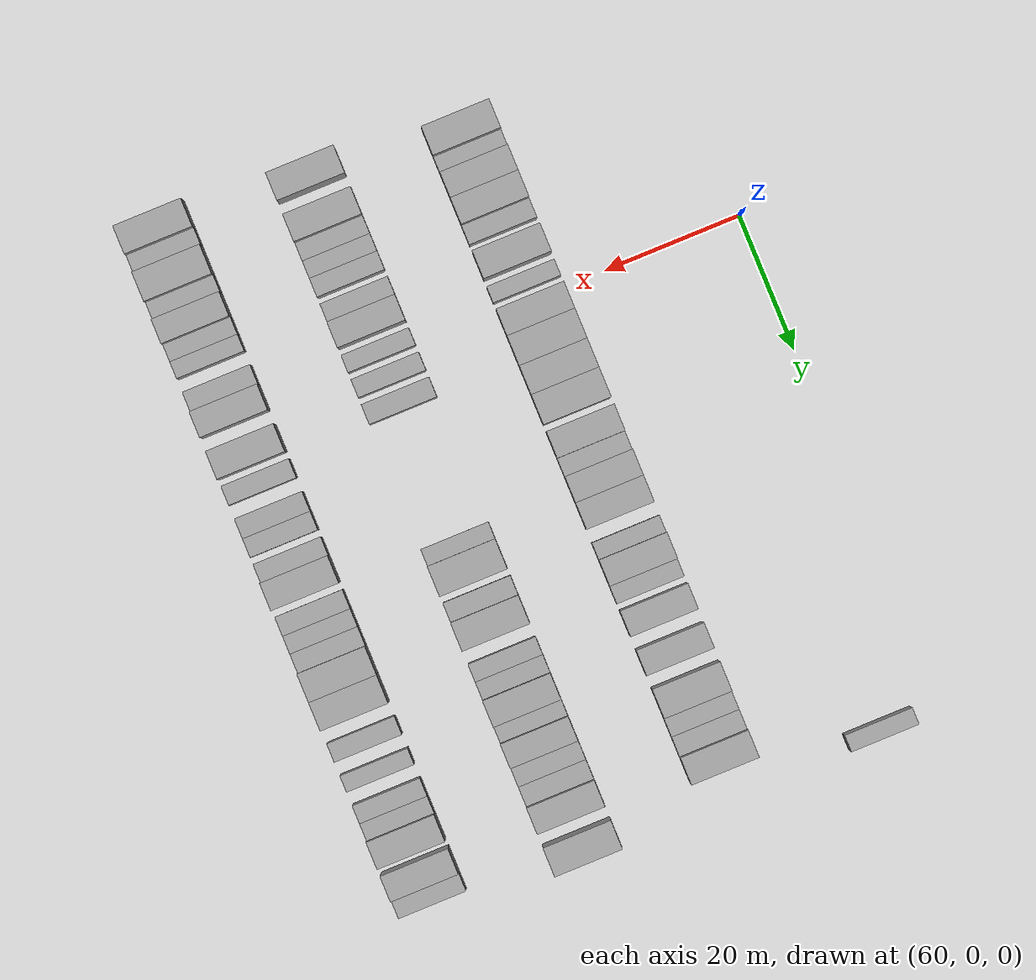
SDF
<sdf version="1.6">
 <world name="default">
  <model name="building_479">
   <static>1</static>
   <pose>69.0000 72.6843 0 0.000000 0.000000 0.000000</pose>
   <link name="link">
    <pose>0 0 3.00 0 0 0</pose>
    <collision name="collision"><geometry><box><size>10.0000 2.4577 6.0000</size></box></geometry></collision>
    <visual name="visual">
     <cast_shadows>0</cast_shadows>
     <geometry><box><size>10.0000 2.4577 6.0000</size></box></geometry>
     <material>
      <script>
       <uri>model://grey_wall/materials/scripts</uri>
       <uri>model://grey_wall/materials/textures</uri>
       <name>vrc/grey_wall</name>
      </script>
     </material>
    </visual>
   </link>
  </model>
  <model name="building_647">
   <static>1</static>
   <pose>91.0000 -25.2966 0 0.000000 0.000000 0.000000</pose>
   <link name="link">
    <pose>0 0 4.50 0 0 0</pose>
    <collision name="collision"><geometry><box><size>10.0000 4.2672 9.0000</size></box></geometry></collision>
    <visual name="visual">
     <cast_shadows>0</cast_shadows>
     <geometry><box><size>10.0000 4.2672 9.0000</size></box></geometry>
     <material>
      <script>
       <uri>model://grey_wall/materials/scripts</uri>
       <uri>model://grey_wall/materials/textures</uri>
       <name>vrc/grey_wall</name>
      </script>
     </material>
    </visual>
   </link>
  </model>
  <model name="building_648">
   <static>1</static>
   <pose>91.0000 -21.9353 0 0.000000 0.000000 0.000000</pose>
   <link name="link">
    <pose>0 0 3.00 0 0 0</pose>
    <collision name="collision"><geometry><box><size>10.0000 2.4554 6.0000</size></box></geometry></collision>
    <visual name="visual">
     <cast_shadows>0</cast_shadows>
     <geometry><box><size>10.0000 2.4554 6.0000</size></box></geometry>
     <material>
      <script>
       <uri>model://grey_wall/materials/scripts</uri>
       <uri>model://grey_wall/materials/textures</uri>
       <name>vrc/grey_wall</name>
      </script>
     </material>
    </visual>
   </link>
  </model>
  <model name="building_649">
   <static>1</static>
   <pose>91.0000 -18.8264 0 0.000000 0.000000 0.000000</pose>
   <link name="link">
    <pose>0 0 4.50 0 0 0</pose>
    <collision name="collision"><geometry><box><size>10.0000 3.7625 9.0000</size></box></geometry></collision>
    <visual name="visual">
     <cast_shadows>0</cast_shadows>
     <geometry><box><size>10.0000 3.7625 9.0000</size></box></geometry>
     <material>
      <script>
       <uri>model://grey_wall/materials/scripts</uri>
       <uri>model://grey_wall/materials/textures</uri>
       <name>vrc/grey_wall</name>
      </script>
     </material>
    </visual>
   </link>
  </model>
  <model name="building_650">
   <static>1</static>
   <pose>91.0000 -14.9778 0 0.000000 0.000000 0.000000</pose>
   <link name="link">
    <pose>0 0 4.50 0 0 0</pose>
    <collision name="collision"><geometry><box><size>10.0000 3.9345 9.0000</size></box></geometry></collision>
    <visual name="visual">
     <cast_shadows>0</cast_shadows>
     <geometry><box><size>10.0000 3.9345 9.0000</size></box></geometry>
     <material>
      <script>
       <uri>model://grey_wall/materials/scripts</uri>
       <uri>model://grey_wall/materials/textures</uri>
       <name>vrc/grey_wall</name>
      </script>
     </material>
    </visual>
   </link>
  </model>
  <model name="building_651">
   <static>1</static>
   <pose>91.0000 -11.5819 0 0.000000 0.000000 0.000000</pose>
   <link name="link">
    <pose>0 0 3.00 0 0 0</pose>
    <collision name="collision"><geometry><box><size>10.0000 2.8575 6.0000</size></box></geometry></collision>
    <visual name="visual">
     <cast_shadows>0</cast_shadows>
     <geometry><box><size>10.0000 2.8575 6.0000</size></box></geometry>
     <material>
      <script>
       <uri>model://grey_wall/materials/scripts</uri>
       <uri>model://grey_wall/materials/textures</uri>
       <name>vrc/grey_wall</name>
      </script>
     </material>
    </visual>
   </link>
  </model>
  <model name="building_652">
   <static>1</static>
   <pose>91.0000 -7.0618 0 0.000000 0.000000 0.000000</pose>
   <link name="link">
    <pose>0 0 4.50 0 0 0</pose>
    <collision name="collision"><geometry><box><size>10.0000 4.1827 9.0000</size></box></geometry></collision>
    <visual name="visual">
     <cast_shadows>0</cast_shadows>
     <geometry><box><size>10.0000 4.1827 9.0000</size></box></geometry>
     <material>
      <script>
       <uri>model://grey_wall/materials/scripts</uri>
       <uri>model://grey_wall/materials/textures</uri>
       <name>vrc/grey_wall</name>
      </script>
     </material>
    </visual>
   </link>
  </model>
  <model name="building_653">
   <static>1</static>
   <pose>91.0000 -2.7565 0 0.000000 0.000000 0.000000</pose>
   <link name="link">
    <pose>0 0 3.00 0 0 0</pose>
    <collision name="collision"><geometry><box><size>10.0000 2.4277 6.0000</size></box></geometry></collision>
    <visual name="visual">
     <cast_shadows>0</cast_shadows>
     <geometry><box><size>10.0000 2.4277 6.0000</size></box></geometry>
     <material>
      <script>
       <uri>model://grey_wall/materials/scripts</uri>
       <uri>model://grey_wall/materials/textures</uri>
       <name>vrc/grey_wall</name>
      </script>
     </material>
    </visual>
   </link>
  </model>
  <model name="building_654">
   <static>1</static>
   <pose>91.0000 1.4361 0 0.000000 0.000000 0.000000</pose>
   <link name="link">
    <pose>0 0 4.50 0 0 0</pose>
    <collision name="collision"><geometry><box><size>10.0000 3.9575 9.0000</size></box></geometry></collision>
    <visual name="visual">
     <cast_shadows>0</cast_shadows>
     <geometry><box><size>10.0000 3.9575 9.0000</size></box></geometry>
     <material>
      <script>
       <uri>model://grey_wall/materials/scripts</uri>
       <uri>model://grey_wall/materials/textures</uri>
       <name>vrc/grey_wall</name>
      </script>
     </material>
    </visual>
   </link>
  </model>
  <model name="building_655">
   <static>1</static>
   <pose>91.0000 5.6165 0 0.000000 0.000000 0.000000</pose>
   <link name="link">
    <pose>0 0 4.50 0 0 0</pose>
    <collision name="collision"><geometry><box><size>10.0000 4.4033 9.0000</size></box></geometry></collision>
    <visual name="visual">
     <cast_shadows>0</cast_shadows>
     <geometry><box><size>10.0000 4.4033 9.0000</size></box></geometry>
     <material>
      <script>
       <uri>model://grey_wall/materials/scripts</uri>
       <uri>model://grey_wall/materials/textures</uri>
       <name>vrc/grey_wall</name>
      </script>
     </material>
    </visual>
   </link>
  </model>
  <model name="building_656">
   <static>1</static>
   <pose>91.0000 9.9535 0 0.000000 0.000000 0.000000</pose>
   <link name="link">
    <pose>0 0 4.50 0 0 0</pose>
    <collision name="collision"><geometry><box><size>10.0000 4.2708 9.0000</size></box></geometry></collision>
    <visual name="visual">
     <cast_shadows>0</cast_shadows>
     <geometry><box><size>10.0000 4.2708 9.0000</size></box></geometry>
     <material>
      <script>
       <uri>model://grey_wall/materials/scripts</uri>
       <uri>model://grey_wall/materials/textures</uri>
       <name>vrc/grey_wall</name>
      </script>
     </material>
    </visual>
   </link>
  </model>
  <model name="building_657">
   <static>1</static>
   <pose>91.0000 14.3061 0 0.000000 0.000000 0.000000</pose>
   <link name="link">
    <pose>0 0 4.50 0 0 0</pose>
    <collision name="collision"><geometry><box><size>10.0000 4.4345 9.0000</size></box></geometry></collision>
    <visual name="visual">
     <cast_shadows>0</cast_shadows>
     <geometry><box><size>10.0000 4.4345 9.0000</size></box></geometry>
     <material>
      <script>
       <uri>model://grey_wall/materials/scripts</uri>
       <uri>model://grey_wall/materials/textures</uri>
       <name>vrc/grey_wall</name>
      </script>
     </material>
    </visual>
   </link>
  </model>
  <model name="building_658">
   <static>1</static>
   <pose>91.0000 19.4960 0 0.000000 0.000000 0.000000</pose>
   <link name="link">
    <pose>0 0 4.50 0 0 0</pose>
    <collision name="collision"><geometry><box><size>10.0000 3.9454 9.0000</size></box></geometry></collision>
    <visual name="visual">
     <cast_shadows>0</cast_shadows>
     <geometry><box><size>10.0000 3.9454 9.0000</size></box></geometry>
     <material>
      <script>
       <uri>model://grey_wall/materials/scripts</uri>
       <uri>model://grey_wall/materials/textures</uri>
       <name>vrc/grey_wall</name>
      </script>
     </material>
    </visual>
   </link>
  </model>
  <model name="building_659">
   <static>1</static>
   <pose>91.0000 22.8226 0 0.000000 0.000000 0.000000</pose>
   <link name="link">
    <pose>0 0 3.00 0 0 0</pose>
    <collision name="collision"><geometry><box><size>10.0000 2.7078 6.0000</size></box></geometry></collision>
    <visual name="visual">
     <cast_shadows>0</cast_shadows>
     <geometry><box><size>10.0000 2.7078 6.0000</size></box></geometry>
     <material>
      <script>
       <uri>model://grey_wall/materials/scripts</uri>
       <uri>model://grey_wall/materials/textures</uri>
       <name>vrc/grey_wall</name>
      </script>
     </material>
    </visual>
   </link>
  </model>
  <model name="building_660">
   <static>1</static>
   <pose>91.0000 26.0993 0 0.000000 0.000000 0.000000</pose>
   <link name="link">
    <pose>0 0 4.50 0 0 0</pose>
    <collision name="collision"><geometry><box><size>10.0000 3.8456 9.0000</size></box></geometry></collision>
    <visual name="visual">
     <cast_shadows>0</cast_shadows>
     <geometry><box><size>10.0000 3.8456 9.0000</size></box></geometry>
     <material>
      <script>
       <uri>model://grey_wall/materials/scripts</uri>
       <uri>model://grey_wall/materials/textures</uri>
       <name>vrc/grey_wall</name>
      </script>
     </material>
    </visual>
   </link>
  </model>
  <model name="building_661">
   <static>1</static>
   <pose>91.0000 29.9905 0 0.000000 0.000000 0.000000</pose>
   <link name="link">
    <pose>0 0 4.50 0 0 0</pose>
    <collision name="collision"><geometry><box><size>10.0000 3.9366 9.0000</size></box></geometry></collision>
    <visual name="visual">
     <cast_shadows>0</cast_shadows>
     <geometry><box><size>10.0000 3.9366 9.0000</size></box></geometry>
     <material>
      <script>
       <uri>model://grey_wall/materials/scripts</uri>
       <uri>model://grey_wall/materials/textures</uri>
       <name>vrc/grey_wall</name>
      </script>
     </material>
    </visual>
   </link>
  </model>
  <model name="building_662">
   <static>1</static>
   <pose>91.0000 35.2042 0 0.000000 0.000000 0.000000</pose>
   <link name="link">
    <pose>0 0 3.00 0 0 0</pose>
    <collision name="collision"><geometry><box><size>10.0000 2.4910 6.0000</size></box></geometry></collision>
    <visual name="visual">
     <cast_shadows>0</cast_shadows>
     <geometry><box><size>10.0000 2.4910 6.0000</size></box></geometry>
     <material>
      <script>
       <uri>model://grey_wall/materials/scripts</uri>
       <uri>model://grey_wall/materials/textures</uri>
       <name>vrc/grey_wall</name>
      </script>
     </material>
    </visual>
   </link>
  </model>
  <model name="building_663">
   <static>1</static>
   <pose>91.0000 38.3889 0 0.000000 0.000000 0.000000</pose>
   <link name="link">
    <pose>0 0 4.50 0 0 0</pose>
    <collision name="collision"><geometry><box><size>10.0000 3.8784 9.0000</size></box></geometry></collision>
    <visual name="visual">
     <cast_shadows>0</cast_shadows>
     <geometry><box><size>10.0000 3.8784 9.0000</size></box></geometry>
     <material>
      <script>
       <uri>model://grey_wall/materials/scripts</uri>
       <uri>model://grey_wall/materials/textures</uri>
       <name>vrc/grey_wall</name>
      </script>
     </material>
    </visual>
   </link>
  </model>
  <model name="building_664">
   <static>1</static>
   <pose>91.0000 41.6538 0 0.000000 0.000000 0.000000</pose>
   <link name="link">
    <pose>0 0 3.00 0 0 0</pose>
    <collision name="collision"><geometry><box><size>10.0000 2.6514 6.0000</size></box></geometry></collision>
    <visual name="visual">
     <cast_shadows>0</cast_shadows>
     <geometry><box><size>10.0000 2.6514 6.0000</size></box></geometry>
     <material>
      <script>
       <uri>model://grey_wall/materials/scripts</uri>
       <uri>model://grey_wall/materials/textures</uri>
       <name>vrc/grey_wall</name>
      </script>
     </material>
    </visual>
   </link>
  </model>
  <model name="building_665">
   <static>1</static>
   <pose>91.0000 45.8766 0 0.000000 0.000000 0.000000</pose>
   <link name="link">
    <pose>0 0 4.50 0 0 0</pose>
    <collision name="collision"><geometry><box><size>10.0000 3.7941 9.0000</size></box></geometry></collision>
    <visual name="visual">
     <cast_shadows>0</cast_shadows>
     <geometry><box><size>10.0000 3.7941 9.0000</size></box></geometry>
     <material>
      <script>
       <uri>model://grey_wall/materials/scripts</uri>
       <uri>model://grey_wall/materials/textures</uri>
       <name>vrc/grey_wall</name>
      </script>
     </material>
    </visual>
   </link>
  </model>
  <model name="building_666">
   <static>1</static>
   <pose>91.0000 51.6459 0 0.000000 0.000000 0.000000</pose>
   <link name="link">
    <pose>0 0 4.50 0 0 0</pose>
    <collision name="collision"><geometry><box><size>10.0000 3.7446 9.0000</size></box></geometry></collision>
    <visual name="visual">
     <cast_shadows>0</cast_shadows>
     <geometry><box><size>10.0000 3.7446 9.0000</size></box></geometry>
     <material>
      <script>
       <uri>model://grey_wall/materials/scripts</uri>
       <uri>model://grey_wall/materials/textures</uri>
       <name>vrc/grey_wall</name>
      </script>
     </material>
    </visual>
   </link>
  </model>
  <model name="building_667">
   <static>1</static>
   <pose>91.0000 57.6847 0 0.000000 0.000000 0.000000</pose>
   <link name="link">
    <pose>0 0 4.50 0 0 0</pose>
    <collision name="collision"><geometry><box><size>10.0000 4.3330 9.0000</size></box></geometry></collision>
    <visual name="visual">
     <cast_shadows>0</cast_shadows>
     <geometry><box><size>10.0000 4.3330 9.0000</size></box></geometry>
     <material>
      <script>
       <uri>model://grey_wall/materials/scripts</uri>
       <uri>model://grey_wall/materials/textures</uri>
       <name>vrc/grey_wall</name>
      </script>
     </material>
    </visual>
   </link>
  </model>
  <model name="building_668">
   <static>1</static>
   <pose>91.0000 61.2664 0 0.000000 0.000000 0.000000</pose>
   <link name="link">
    <pose>0 0 3.00 0 0 0</pose>
    <collision name="collision"><geometry><box><size>10.0000 2.8304 6.0000</size></box></geometry></collision>
    <visual name="visual">
     <cast_shadows>0</cast_shadows>
     <geometry><box><size>10.0000 2.8304 6.0000</size></box></geometry>
     <material>
      <script>
       <uri>model://grey_wall/materials/scripts</uri>
       <uri>model://grey_wall/materials/textures</uri>
       <name>vrc/grey_wall</name>
      </script>
     </material>
    </visual>
   </link>
  </model>
  <model name="building_669">
   <static>1</static>
   <pose>91.0000 64.1423 0 0.000000 0.000000 0.000000</pose>
   <link name="link">
    <pose>0 0 3.00 0 0 0</pose>
    <collision name="collision"><geometry><box><size>10.0000 2.9213 6.0000</size></box></geometry></collision>
    <visual name="visual">
     <cast_shadows>0</cast_shadows>
     <geometry><box><size>10.0000 2.9213 6.0000</size></box></geometry>
     <material>
      <script>
       <uri>model://grey_wall/materials/scripts</uri>
       <uri>model://grey_wall/materials/textures</uri>
       <name>vrc/grey_wall</name>
      </script>
     </material>
    </visual>
   </link>
  </model>
  <model name="building_670">
   <static>1</static>
   <pose>91.0000 67.6167 0 0.000000 0.000000 0.000000</pose>
   <link name="link">
    <pose>0 0 4.50 0 0 0</pose>
    <collision name="collision"><geometry><box><size>10.0000 4.0274 9.0000</size></box></geometry></collision>
    <visual name="visual">
     <cast_shadows>0</cast_shadows>
     <geometry><box><size>10.0000 4.0274 9.0000</size></box></geometry>
     <material>
      <script>
       <uri>model://grey_wall/materials/scripts</uri>
       <uri>model://grey_wall/materials/textures</uri>
       <name>vrc/grey_wall</name>
      </script>
     </material>
    </visual>
   </link>
  </model>
  <model name="building_834">
   <static>1</static>
   <pose>113.0000 -27.5882 0 0.000000 0.000000 0.000000</pose>
   <link name="link">
    <pose>0 0 4.50 0 0 0</pose>
    <collision name="collision"><geometry><box><size>10.0000 4.1165 9.0000</size></box></geometry></collision>
    <visual name="visual">
     <cast_shadows>0</cast_shadows>
     <geometry><box><size>10.0000 4.1165 9.0000</size></box></geometry>
     <material>
      <script>
       <uri>model://grey_wall/materials/scripts</uri>
       <uri>model://grey_wall/materials/textures</uri>
       <name>vrc/grey_wall</name>
      </script>
     </material>
    </visual>
   </link>
  </model>
  <model name="building_835">
   <static>1</static>
   <pose>113.0000 -21.4997 0 0.000000 0.000000 0.000000</pose>
   <link name="link">
    <pose>0 0 4.50 0 0 0</pose>
    <collision name="collision"><geometry><box><size>10.0000 4.0605 9.0000</size></box></geometry></collision>
    <visual name="visual">
     <cast_shadows>0</cast_shadows>
     <geometry><box><size>10.0000 4.0605 9.0000</size></box></geometry>
     <material>
      <script>
       <uri>model://grey_wall/materials/scripts</uri>
       <uri>model://grey_wall/materials/textures</uri>
       <name>vrc/grey_wall</name>
      </script>
     </material>
    </visual>
   </link>
  </model>
  <model name="building_836">
   <static>1</static>
   <pose>113.0000 -18.1268 0 0.000000 0.000000 0.000000</pose>
   <link name="link">
    <pose>0 0 3.00 0 0 0</pose>
    <collision name="collision"><geometry><box><size>10.0000 2.6852 6.0000</size></box></geometry></collision>
    <visual name="visual">
     <cast_shadows>0</cast_shadows>
     <geometry><box><size>10.0000 2.6852 6.0000</size></box></geometry>
     <material>
      <script>
       <uri>model://grey_wall/materials/scripts</uri>
       <uri>model://grey_wall/materials/textures</uri>
       <name>vrc/grey_wall</name>
      </script>
     </material>
    </visual>
   </link>
  </model>
  <model name="building_837">
   <static>1</static>
   <pose>113.0000 -15.4956 0 0.000000 0.000000 0.000000</pose>
   <link name="link">
    <pose>0 0 3.00 0 0 0</pose>
    <collision name="collision"><geometry><box><size>10.0000 2.5773 6.0000</size></box></geometry></collision>
    <visual name="visual">
     <cast_shadows>0</cast_shadows>
     <geometry><box><size>10.0000 2.5773 6.0000</size></box></geometry>
     <material>
      <script>
       <uri>model://grey_wall/materials/scripts</uri>
       <uri>model://grey_wall/materials/textures</uri>
       <name>vrc/grey_wall</name>
      </script>
     </material>
    </visual>
   </link>
  </model>
  <model name="building_838">
   <static>1</static>
   <pose>113.0000 -12.8261 0 0.000000 0.000000 0.000000</pose>
   <link name="link">
    <pose>0 0 3.00 0 0 0</pose>
    <collision name="collision"><geometry><box><size>10.0000 2.7617 6.0000</size></box></geometry></collision>
    <visual name="visual">
     <cast_shadows>0</cast_shadows>
     <geometry><box><size>10.0000 2.7617 6.0000</size></box></geometry>
     <material>
      <script>
       <uri>model://grey_wall/materials/scripts</uri>
       <uri>model://grey_wall/materials/textures</uri>
       <name>vrc/grey_wall</name>
      </script>
     </material>
    </visual>
   </link>
  </model>
  <model name="building_839">
   <static>1</static>
   <pose>113.0000 -9.0489 0 0.000000 0.000000 0.000000</pose>
   <link name="link">
    <pose>0 0 3.00 0 0 0</pose>
    <collision name="collision"><geometry><box><size>10.0000 2.7926 6.0000</size></box></geometry></collision>
    <visual name="visual">
     <cast_shadows>0</cast_shadows>
     <geometry><box><size>10.0000 2.7926 6.0000</size></box></geometry>
     <material>
      <script>
       <uri>model://grey_wall/materials/scripts</uri>
       <uri>model://grey_wall/materials/textures</uri>
       <name>vrc/grey_wall</name>
      </script>
     </material>
    </visual>
   </link>
  </model>
  <model name="building_840">
   <static>1</static>
   <pose>113.0000 -5.7442 0 0.000000 0.000000 0.000000</pose>
   <link name="link">
    <pose>0 0 4.50 0 0 0</pose>
    <collision name="collision"><geometry><box><size>10.0000 3.8169 9.0000</size></box></geometry></collision>
    <visual name="visual">
     <cast_shadows>0</cast_shadows>
     <geometry><box><size>10.0000 3.8169 9.0000</size></box></geometry>
     <material>
      <script>
       <uri>model://grey_wall/materials/scripts</uri>
       <uri>model://grey_wall/materials/textures</uri>
       <name>vrc/grey_wall</name>
      </script>
     </material>
    </visual>
   </link>
  </model>
  <model name="building_841">
   <static>1</static>
   <pose>113.0000 -1.5470 0 0.000000 0.000000 0.000000</pose>
   <link name="link">
    <pose>0 0 3.00 0 0 0</pose>
    <collision name="collision"><geometry><box><size>10.0000 2.5776 6.0000</size></box></geometry></collision>
    <visual name="visual">
     <cast_shadows>0</cast_shadows>
     <geometry><box><size>10.0000 2.5776 6.0000</size></box></geometry>
     <material>
      <script>
       <uri>model://grey_wall/materials/scripts</uri>
       <uri>model://grey_wall/materials/textures</uri>
       <name>vrc/grey_wall</name>
      </script>
     </material>
    </visual>
   </link>
  </model>
  <model name="building_842">
   <static>1</static>
   <pose>113.0000 2.0966 0 0.000000 0.000000 0.000000</pose>
   <link name="link">
    <pose>0 0 3.00 0 0 0</pose>
    <collision name="collision"><geometry><box><size>10.0000 2.7095 6.0000</size></box></geometry></collision>
    <visual name="visual">
     <cast_shadows>0</cast_shadows>
     <geometry><box><size>10.0000 2.7095 6.0000</size></box></geometry>
     <material>
      <script>
       <uri>model://grey_wall/materials/scripts</uri>
       <uri>model://grey_wall/materials/textures</uri>
       <name>vrc/grey_wall</name>
      </script>
     </material>
    </visual>
   </link>
  </model>
  <model name="building_843">
   <static>1</static>
   <pose>113.0000 5.9287 0 0.000000 0.000000 0.000000</pose>
   <link name="link">
    <pose>0 0 3.00 0 0 0</pose>
    <collision name="collision"><geometry><box><size>10.0000 2.9547 6.0000</size></box></geometry></collision>
    <visual name="visual">
     <cast_shadows>0</cast_shadows>
     <geometry><box><size>10.0000 2.9547 6.0000</size></box></geometry>
     <material>
      <script>
       <uri>model://grey_wall/materials/scripts</uri>
       <uri>model://grey_wall/materials/textures</uri>
       <name>vrc/grey_wall</name>
      </script>
     </material>
    </visual>
   </link>
  </model>
  <model name="building_844">
   <static>1</static>
   <pose>113.0000 27.1335 0 0.000000 0.000000 0.000000</pose>
   <link name="link">
    <pose>0 0 3.00 0 0 0</pose>
    <collision name="collision"><geometry><box><size>10.0000 2.4849 6.0000</size></box></geometry></collision>
    <visual name="visual">
     <cast_shadows>0</cast_shadows>
     <geometry><box><size>10.0000 2.4849 6.0000</size></box></geometry>
     <material>
      <script>
       <uri>model://grey_wall/materials/scripts</uri>
       <uri>model://grey_wall/materials/textures</uri>
       <name>vrc/grey_wall</name>
      </script>
     </material>
    </visual>
   </link>
  </model>
  <model name="building_845">
   <static>1</static>
   <pose>113.0000 30.6043 0 0.000000 0.000000 0.000000</pose>
   <link name="link">
    <pose>0 0 4.50 0 0 0</pose>
    <collision name="collision"><geometry><box><size>10.0000 4.4568 9.0000</size></box></geometry></collision>
    <visual name="visual">
     <cast_shadows>0</cast_shadows>
     <geometry><box><size>10.0000 4.4568 9.0000</size></box></geometry>
     <material>
      <script>
       <uri>model://grey_wall/materials/scripts</uri>
       <uri>model://grey_wall/materials/textures</uri>
       <name>vrc/grey_wall</name>
      </script>
     </material>
    </visual>
   </link>
  </model>
  <model name="building_846">
   <static>1</static>
   <pose>113.0000 35.2597 0 0.000000 0.000000 0.000000</pose>
   <link name="link">
    <pose>0 0 3.00 0 0 0</pose>
    <collision name="collision"><geometry><box><size>10.0000 2.8541 6.0000</size></box></geometry></collision>
    <visual name="visual">
     <cast_shadows>0</cast_shadows>
     <geometry><box><size>10.0000 2.8541 6.0000</size></box></geometry>
     <material>
      <script>
       <uri>model://grey_wall/materials/scripts</uri>
       <uri>model://grey_wall/materials/textures</uri>
       <name>vrc/grey_wall</name>
      </script>
     </material>
    </visual>
   </link>
  </model>
  <model name="building_847">
   <static>1</static>
   <pose>113.0000 38.7917 0 0.000000 0.000000 0.000000</pose>
   <link name="link">
    <pose>0 0 4.50 0 0 0</pose>
    <collision name="collision"><geometry><box><size>10.0000 4.2098 9.0000</size></box></geometry></collision>
    <visual name="visual">
     <cast_shadows>0</cast_shadows>
     <geometry><box><size>10.0000 4.2098 9.0000</size></box></geometry>
     <material>
      <script>
       <uri>model://grey_wall/materials/scripts</uri>
       <uri>model://grey_wall/materials/textures</uri>
       <name>vrc/grey_wall</name>
      </script>
     </material>
    </visual>
   </link>
  </model>
  <model name="building_848">
   <static>1</static>
   <pose>113.0000 44.2140 0 0.000000 0.000000 0.000000</pose>
   <link name="link">
    <pose>0 0 3.00 0 0 0</pose>
    <collision name="collision"><geometry><box><size>10.0000 2.6349 6.0000</size></box></geometry></collision>
    <visual name="visual">
     <cast_shadows>0</cast_shadows>
     <geometry><box><size>10.0000 2.6349 6.0000</size></box></geometry>
     <material>
      <script>
       <uri>model://grey_wall/materials/scripts</uri>
       <uri>model://grey_wall/materials/textures</uri>
       <name>vrc/grey_wall</name>
      </script>
     </material>
    </visual>
   </link>
  </model>
  <model name="building_849">
   <static>1</static>
   <pose>113.0000 46.8538 0 0.000000 0.000000 0.000000</pose>
   <link name="link">
    <pose>0 0 3.00 0 0 0</pose>
    <collision name="collision"><geometry><box><size>10.0000 2.6447 6.0000</size></box></geometry></collision>
    <visual name="visual">
     <cast_shadows>0</cast_shadows>
     <geometry><box><size>10.0000 2.6447 6.0000</size></box></geometry>
     <material>
      <script>
       <uri>model://grey_wall/materials/scripts</uri>
       <uri>model://grey_wall/materials/textures</uri>
       <name>vrc/grey_wall</name>
      </script>
     </material>
    </visual>
   </link>
  </model>
  <model name="building_850">
   <static>1</static>
   <pose>113.0000 50.1375 0 0.000000 0.000000 0.000000</pose>
   <link name="link">
    <pose>0 0 4.50 0 0 0</pose>
    <collision name="collision"><geometry><box><size>10.0000 3.9228 9.0000</size></box></geometry></collision>
    <visual name="visual">
     <cast_shadows>0</cast_shadows>
     <geometry><box><size>10.0000 3.9228 9.0000</size></box></geometry>
     <material>
      <script>
       <uri>model://grey_wall/materials/scripts</uri>
       <uri>model://grey_wall/materials/textures</uri>
       <name>vrc/grey_wall</name>
      </script>
     </material>
    </visual>
   </link>
  </model>
  <model name="building_851">
   <static>1</static>
   <pose>113.0000 53.3275 0 0.000000 0.000000 0.000000</pose>
   <link name="link">
    <pose>0 0 3.00 0 0 0</pose>
    <collision name="collision"><geometry><box><size>10.0000 2.4571 6.0000</size></box></geometry></collision>
    <visual name="visual">
     <cast_shadows>0</cast_shadows>
     <geometry><box><size>10.0000 2.4571 6.0000</size></box></geometry>
     <material>
      <script>
       <uri>model://grey_wall/materials/scripts</uri>
       <uri>model://grey_wall/materials/textures</uri>
       <name>vrc/grey_wall</name>
      </script>
     </material>
    </visual>
   </link>
  </model>
  <model name="building_852">
   <static>1</static>
   <pose>113.0000 56.3704 0 0.000000 0.000000 0.000000</pose>
   <link name="link">
    <pose>0 0 4.50 0 0 0</pose>
    <collision name="collision"><geometry><box><size>10.0000 3.6287 9.0000</size></box></geometry></collision>
    <visual name="visual">
     <cast_shadows>0</cast_shadows>
     <geometry><box><size>10.0000 3.6287 9.0000</size></box></geometry>
     <material>
      <script>
       <uri>model://grey_wall/materials/scripts</uri>
       <uri>model://grey_wall/materials/textures</uri>
       <name>vrc/grey_wall</name>
      </script>
     </material>
    </visual>
   </link>
  </model>
  <model name="building_853">
   <static>1</static>
   <pose>113.0000 59.6178 0 0.000000 0.000000 0.000000</pose>
   <link name="link">
    <pose>0 0 3.00 0 0 0</pose>
    <collision name="collision"><geometry><box><size>10.0000 2.8660 6.0000</size></box></geometry></collision>
    <visual name="visual">
     <cast_shadows>0</cast_shadows>
     <geometry><box><size>10.0000 2.8660 6.0000</size></box></geometry>
     <material>
      <script>
       <uri>model://grey_wall/materials/scripts</uri>
       <uri>model://grey_wall/materials/textures</uri>
       <name>vrc/grey_wall</name>
      </script>
     </material>
    </visual>
   </link>
  </model>
  <model name="building_854">
   <static>1</static>
   <pose>113.0000 62.5063 0 0.000000 0.000000 0.000000</pose>
   <link name="link">
    <pose>0 0 3.00 0 0 0</pose>
    <collision name="collision"><geometry><box><size>10.0000 2.9109 6.0000</size></box></geometry></collision>
    <visual name="visual">
     <cast_shadows>0</cast_shadows>
     <geometry><box><size>10.0000 2.9109 6.0000</size></box></geometry>
     <material>
      <script>
       <uri>model://grey_wall/materials/scripts</uri>
       <uri>model://grey_wall/materials/textures</uri>
       <name>vrc/grey_wall</name>
      </script>
     </material>
    </visual>
   </link>
  </model>
  <model name="building_855">
   <static>1</static>
   <pose>113.0000 65.9159 0 0.000000 0.000000 0.000000</pose>
   <link name="link">
    <pose>0 0 4.50 0 0 0</pose>
    <collision name="collision"><geometry><box><size>10.0000 3.9084 9.0000</size></box></geometry></collision>
    <visual name="visual">
     <cast_shadows>0</cast_shadows>
     <geometry><box><size>10.0000 3.9084 9.0000</size></box></geometry>
     <material>
      <script>
       <uri>model://grey_wall/materials/scripts</uri>
       <uri>model://grey_wall/materials/textures</uri>
       <name>vrc/grey_wall</name>
      </script>
     </material>
    </visual>
   </link>
  </model>
  <model name="building_856">
   <static>1</static>
   <pose>113.0000 72.0000 0 0.000000 0.000000 0.000000</pose>
   <link name="link">
    <pose>0 0 4.50 0 0 0</pose>
    <collision name="collision"><geometry><box><size>10.0000 4.2596 9.0000</size></box></geometry></collision>
    <visual name="visual">
     <cast_shadows>0</cast_shadows>
     <geometry><box><size>10.0000 4.2596 9.0000</size></box></geometry>
     <material>
      <script>
       <uri>model://grey_wall/materials/scripts</uri>
       <uri>model://grey_wall/materials/textures</uri>
       <name>vrc/grey_wall</name>
      </script>
     </material>
    </visual>
   </link>
  </model>
  <model name="building_1021">
   <static>1</static>
   <pose>135.0000 -28.7566 0 0.000000 0.000000 0.000000</pose>
   <link name="link">
    <pose>0 0 4.50 0 0 0</pose>
    <collision name="collision"><geometry><box><size>10.0000 4.1613 9.0000</size></box></geometry></collision>
    <visual name="visual">
     <cast_shadows>0</cast_shadows>
     <geometry><box><size>10.0000 4.1613 9.0000</size></box></geometry>
     <material>
      <script>
       <uri>model://grey_wall/materials/scripts</uri>
       <uri>model://grey_wall/materials/textures</uri>
       <name>vrc/grey_wall</name>
      </script>
     </material>
    </visual>
   </link>
  </model>
  <model name="building_1022">
   <static>1</static>
   <pose>135.0000 -25.3666 0 0.000000 0.000000 0.000000</pose>
   <link name="link">
    <pose>0 0 3.00 0 0 0</pose>
    <collision name="collision"><geometry><box><size>10.0000 2.6186 6.0000</size></box></geometry></collision>
    <visual name="visual">
     <cast_shadows>0</cast_shadows>
     <geometry><box><size>10.0000 2.6186 6.0000</size></box></geometry>
     <material>
      <script>
       <uri>model://grey_wall/materials/scripts</uri>
       <uri>model://grey_wall/materials/textures</uri>
       <name>vrc/grey_wall</name>
      </script>
     </material>
    </visual>
   </link>
  </model>
  <model name="building_1023">
   <static>1</static>
   <pose>135.0000 -21.8793 0 0.000000 0.000000 0.000000</pose>
   <link name="link">
    <pose>0 0 4.50 0 0 0</pose>
    <collision name="collision"><geometry><box><size>10.0000 4.3561 9.0000</size></box></geometry></collision>
    <visual name="visual">
     <cast_shadows>0</cast_shadows>
     <geometry><box><size>10.0000 4.3561 9.0000</size></box></geometry>
     <material>
      <script>
       <uri>model://grey_wall/materials/scripts</uri>
       <uri>model://grey_wall/materials/textures</uri>
       <name>vrc/grey_wall</name>
      </script>
     </material>
    </visual>
   </link>
  </model>
  <model name="building_1024">
   <static>1</static>
   <pose>135.0000 -18.3964 0 0.000000 0.000000 0.000000</pose>
   <link name="link">
    <pose>0 0 3.00 0 0 0</pose>
    <collision name="collision"><geometry><box><size>10.0000 2.6097 6.0000</size></box></geometry></collision>
    <visual name="visual">
     <cast_shadows>0</cast_shadows>
     <geometry><box><size>10.0000 2.6097 6.0000</size></box></geometry>
     <material>
      <script>
       <uri>model://grey_wall/materials/scripts</uri>
       <uri>model://grey_wall/materials/textures</uri>
       <name>vrc/grey_wall</name>
      </script>
     </material>
    </visual>
   </link>
  </model>
  <model name="building_1025">
   <static>1</static>
   <pose>135.0000 -15.2780 0 0.000000 0.000000 0.000000</pose>
   <link name="link">
    <pose>0 0 4.50 0 0 0</pose>
    <collision name="collision"><geometry><box><size>10.0000 3.6271 9.0000</size></box></geometry></collision>
    <visual name="visual">
     <cast_shadows>0</cast_shadows>
     <geometry><box><size>10.0000 3.6271 9.0000</size></box></geometry>
     <material>
      <script>
       <uri>model://grey_wall/materials/scripts</uri>
       <uri>model://grey_wall/materials/textures</uri>
       <name>vrc/grey_wall</name>
      </script>
     </material>
    </visual>
   </link>
  </model>
  <model name="building_1026">
   <static>1</static>
   <pose>135.0000 -12.1866 0 0.000000 0.000000 0.000000</pose>
   <link name="link">
    <pose>0 0 3.00 0 0 0</pose>
    <collision name="collision"><geometry><box><size>10.0000 2.5556 6.0000</size></box></geometry></collision>
    <visual name="visual">
     <cast_shadows>0</cast_shadows>
     <geometry><box><size>10.0000 2.5556 6.0000</size></box></geometry>
     <material>
      <script>
       <uri>model://grey_wall/materials/scripts</uri>
       <uri>model://grey_wall/materials/textures</uri>
       <name>vrc/grey_wall</name>
      </script>
     </material>
    </visual>
   </link>
  </model>
  <model name="building_1027">
   <static>1</static>
   <pose>135.0000 -9.6609 0 0.000000 0.000000 0.000000</pose>
   <link name="link">
    <pose>0 0 3.00 0 0 0</pose>
    <collision name="collision"><geometry><box><size>10.0000 2.4959 6.0000</size></box></geometry></collision>
    <visual name="visual">
     <cast_shadows>0</cast_shadows>
     <geometry><box><size>10.0000 2.4959 6.0000</size></box></geometry>
     <material>
      <script>
       <uri>model://grey_wall/materials/scripts</uri>
       <uri>model://grey_wall/materials/textures</uri>
       <name>vrc/grey_wall</name>
      </script>
     </material>
    </visual>
   </link>
  </model>
  <model name="building_1028">
   <static>1</static>
   <pose>135.0000 -4.9412 0 0.000000 0.000000 0.000000</pose>
   <link name="link">
    <pose>0 0 3.00 0 0 0</pose>
    <collision name="collision"><geometry><box><size>10.0000 2.9435 6.0000</size></box></geometry></collision>
    <visual name="visual">
     <cast_shadows>0</cast_shadows>
     <geometry><box><size>10.0000 2.9435 6.0000</size></box></geometry>
     <material>
      <script>
       <uri>model://grey_wall/materials/scripts</uri>
       <uri>model://grey_wall/materials/textures</uri>
       <name>vrc/grey_wall</name>
      </script>
     </material>
    </visual>
   </link>
  </model>
  <model name="building_1029">
   <static>1</static>
   <pose>135.0000 -1.5488 0 0.000000 0.000000 0.000000</pose>
   <link name="link">
    <pose>0 0 4.50 0 0 0</pose>
    <collision name="collision"><geometry><box><size>10.0000 3.8412 9.0000</size></box></geometry></collision>
    <visual name="visual">
     <cast_shadows>0</cast_shadows>
     <geometry><box><size>10.0000 3.8412 9.0000</size></box></geometry>
     <material>
      <script>
       <uri>model://grey_wall/materials/scripts</uri>
       <uri>model://grey_wall/materials/textures</uri>
       <name>vrc/grey_wall</name>
      </script>
     </material>
    </visual>
   </link>
  </model>
  <model name="building_1030">
   <static>1</static>
   <pose>135.0000 4.4389 0 0.000000 0.000000 0.000000</pose>
   <link name="link">
    <pose>0 0 4.50 0 0 0</pose>
    <collision name="collision"><geometry><box><size>10.0000 4.1342 9.0000</size></box></geometry></collision>
    <visual name="visual">
     <cast_shadows>0</cast_shadows>
     <geometry><box><size>10.0000 4.1342 9.0000</size></box></geometry>
     <material>
      <script>
       <uri>model://grey_wall/materials/scripts</uri>
       <uri>model://grey_wall/materials/textures</uri>
       <name>vrc/grey_wall</name>
      </script>
     </material>
    </visual>
   </link>
  </model>
  <model name="building_1031">
   <static>1</static>
   <pose>135.0000 8.9220 0 0.000000 0.000000 0.000000</pose>
   <link name="link">
    <pose>0 0 3.00 0 0 0</pose>
    <collision name="collision"><geometry><box><size>10.0000 2.8319 6.0000</size></box></geometry></collision>
    <visual name="visual">
     <cast_shadows>0</cast_shadows>
     <geometry><box><size>10.0000 2.8319 6.0000</size></box></geometry>
     <material>
      <script>
       <uri>model://grey_wall/materials/scripts</uri>
       <uri>model://grey_wall/materials/textures</uri>
       <name>vrc/grey_wall</name>
      </script>
     </material>
    </visual>
   </link>
  </model>
  <model name="building_1032">
   <static>1</static>
   <pose>135.0000 13.8146 0 0.000000 0.000000 0.000000</pose>
   <link name="link">
    <pose>0 0 3.00 0 0 0</pose>
    <collision name="collision"><geometry><box><size>10.0000 2.9534 6.0000</size></box></geometry></collision>
    <visual name="visual">
     <cast_shadows>0</cast_shadows>
     <geometry><box><size>10.0000 2.9534 6.0000</size></box></geometry>
     <material>
      <script>
       <uri>model://grey_wall/materials/scripts</uri>
       <uri>model://grey_wall/materials/textures</uri>
       <name>vrc/grey_wall</name>
      </script>
     </material>
    </visual>
   </link>
  </model>
  <model name="building_1033">
   <static>1</static>
   <pose>135.0000 16.6819 0 0.000000 0.000000 0.000000</pose>
   <link name="link">
    <pose>0 0 3.00 0 0 0</pose>
    <collision name="collision"><geometry><box><size>10.0000 2.7812 6.0000</size></box></geometry></collision>
    <visual name="visual">
     <cast_shadows>0</cast_shadows>
     <geometry><box><size>10.0000 2.7812 6.0000</size></box></geometry>
     <material>
      <script>
       <uri>model://grey_wall/materials/scripts</uri>
       <uri>model://grey_wall/materials/textures</uri>
       <name>vrc/grey_wall</name>
      </script>
     </material>
    </visual>
   </link>
  </model>
  <model name="building_1034">
   <static>1</static>
   <pose>135.0000 20.4473 0 0.000000 0.000000 0.000000</pose>
   <link name="link">
    <pose>0 0 3.00 0 0 0</pose>
    <collision name="collision"><geometry><box><size>10.0000 2.7495 6.0000</size></box></geometry></collision>
    <visual name="visual">
     <cast_shadows>0</cast_shadows>
     <geometry><box><size>10.0000 2.7495 6.0000</size></box></geometry>
     <material>
      <script>
       <uri>model://grey_wall/materials/scripts</uri>
       <uri>model://grey_wall/materials/textures</uri>
       <name>vrc/grey_wall</name>
      </script>
     </material>
    </visual>
   </link>
  </model>
  <model name="building_1035">
   <static>1</static>
   <pose>135.0000 23.8547 0 0.000000 0.000000 0.000000</pose>
   <link name="link">
    <pose>0 0 4.50 0 0 0</pose>
    <collision name="collision"><geometry><box><size>10.0000 4.0653 9.0000</size></box></geometry></collision>
    <visual name="visual">
     <cast_shadows>0</cast_shadows>
     <geometry><box><size>10.0000 4.0653 9.0000</size></box></geometry>
     <material>
      <script>
       <uri>model://grey_wall/materials/scripts</uri>
       <uri>model://grey_wall/materials/textures</uri>
       <name>vrc/grey_wall</name>
      </script>
     </material>
    </visual>
   </link>
  </model>
  <model name="building_1036">
   <static>1</static>
   <pose>135.0000 28.3048 0 0.000000 0.000000 0.000000</pose>
   <link name="link">
    <pose>0 0 3.00 0 0 0</pose>
    <collision name="collision"><geometry><box><size>10.0000 2.8350 6.0000</size></box></geometry></collision>
    <visual name="visual">
     <cast_shadows>0</cast_shadows>
     <geometry><box><size>10.0000 2.8350 6.0000</size></box></geometry>
     <material>
      <script>
       <uri>model://grey_wall/materials/scripts</uri>
       <uri>model://grey_wall/materials/textures</uri>
       <name>vrc/grey_wall</name>
      </script>
     </material>
    </visual>
   </link>
  </model>
  <model name="building_1037">
   <static>1</static>
   <pose>135.0000 31.0374 0 0.000000 0.000000 0.000000</pose>
   <link name="link">
    <pose>0 0 3.00 0 0 0</pose>
    <collision name="collision"><geometry><box><size>10.0000 2.6302 6.0000</size></box></geometry></collision>
    <visual name="visual">
     <cast_shadows>0</cast_shadows>
     <geometry><box><size>10.0000 2.6302 6.0000</size></box></geometry>
     <material>
      <script>
       <uri>model://grey_wall/materials/scripts</uri>
       <uri>model://grey_wall/materials/textures</uri>
       <name>vrc/grey_wall</name>
      </script>
     </material>
    </visual>
   </link>
  </model>
  <model name="building_1038">
   <static>1</static>
   <pose>135.0000 33.7722 0 0.000000 0.000000 0.000000</pose>
   <link name="link">
    <pose>0 0 3.00 0 0 0</pose>
    <collision name="collision"><geometry><box><size>10.0000 2.8395 6.0000</size></box></geometry></collision>
    <visual name="visual">
     <cast_shadows>0</cast_shadows>
     <geometry><box><size>10.0000 2.8395 6.0000</size></box></geometry>
     <material>
      <script>
       <uri>model://grey_wall/materials/scripts</uri>
       <uri>model://grey_wall/materials/textures</uri>
       <name>vrc/grey_wall</name>
      </script>
     </material>
    </visual>
   </link>
  </model>
  <model name="building_1039">
   <static>1</static>
   <pose>135.0000 37.3011 0 0.000000 0.000000 0.000000</pose>
   <link name="link">
    <pose>0 0 4.50 0 0 0</pose>
    <collision name="collision"><geometry><box><size>10.0000 4.2184 9.0000</size></box></geometry></collision>
    <visual name="visual">
     <cast_shadows>0</cast_shadows>
     <geometry><box><size>10.0000 4.2184 9.0000</size></box></geometry>
     <material>
      <script>
       <uri>model://grey_wall/materials/scripts</uri>
       <uri>model://grey_wall/materials/textures</uri>
       <name>vrc/grey_wall</name>
      </script>
     </material>
    </visual>
   </link>
  </model>
  <model name="building_1040">
   <static>1</static>
   <pose>135.0000 41.5095 0 0.000000 0.000000 0.000000</pose>
   <link name="link">
    <pose>0 0 4.50 0 0 0</pose>
    <collision name="collision"><geometry><box><size>10.0000 4.1983 9.0000</size></box></geometry></collision>
    <visual name="visual">
     <cast_shadows>0</cast_shadows>
     <geometry><box><size>10.0000 4.1983 9.0000</size></box></geometry>
     <material>
      <script>
       <uri>model://grey_wall/materials/scripts</uri>
       <uri>model://grey_wall/materials/textures</uri>
       <name>vrc/grey_wall</name>
      </script>
     </material>
    </visual>
   </link>
  </model>
  <model name="building_1041">
   <static>1</static>
   <pose>135.0000 46.9858 0 0.000000 0.000000 0.000000</pose>
   <link name="link">
    <pose>0 0 3.00 0 0 0</pose>
    <collision name="collision"><geometry><box><size>10.0000 2.7544 6.0000</size></box></geometry></collision>
    <visual name="visual">
     <cast_shadows>0</cast_shadows>
     <geometry><box><size>10.0000 2.7544 6.0000</size></box></geometry>
     <material>
      <script>
       <uri>model://grey_wall/materials/scripts</uri>
       <uri>model://grey_wall/materials/textures</uri>
       <name>vrc/grey_wall</name>
      </script>
     </material>
    </visual>
   </link>
  </model>
  <model name="building_1042">
   <static>1</static>
   <pose>135.0000 51.5771 0 0.000000 0.000000 0.000000</pose>
   <link name="link">
    <pose>0 0 3.00 0 0 0</pose>
    <collision name="collision"><geometry><box><size>10.0000 2.4282 6.0000</size></box></geometry></collision>
    <visual name="visual">
     <cast_shadows>0</cast_shadows>
     <geometry><box><size>10.0000 2.4282 6.0000</size></box></geometry>
     <material>
      <script>
       <uri>model://grey_wall/materials/scripts</uri>
       <uri>model://grey_wall/materials/textures</uri>
       <name>vrc/grey_wall</name>
      </script>
     </material>
    </visual>
   </link>
  </model>
  <model name="building_1043">
   <static>1</static>
   <pose>135.0000 56.1203 0 0.000000 0.000000 0.000000</pose>
   <link name="link">
    <pose>0 0 3.00 0 0 0</pose>
    <collision name="collision"><geometry><box><size>10.0000 2.6581 6.0000</size></box></geometry></collision>
    <visual name="visual">
     <cast_shadows>0</cast_shadows>
     <geometry><box><size>10.0000 2.6581 6.0000</size></box></geometry>
     <material>
      <script>
       <uri>model://grey_wall/materials/scripts</uri>
       <uri>model://grey_wall/materials/textures</uri>
       <name>vrc/grey_wall</name>
      </script>
     </material>
    </visual>
   </link>
  </model>
  <model name="building_1044">
   <static>1</static>
   <pose>135.0000 58.7208 0 0.000000 0.000000 0.000000</pose>
   <link name="link">
    <pose>0 0 3.00 0 0 0</pose>
    <collision name="collision"><geometry><box><size>10.0000 2.5430 6.0000</size></box></geometry></collision>
    <visual name="visual">
     <cast_shadows>0</cast_shadows>
     <geometry><box><size>10.0000 2.5430 6.0000</size></box></geometry>
     <material>
      <script>
       <uri>model://grey_wall/materials/scripts</uri>
       <uri>model://grey_wall/materials/textures</uri>
       <name>vrc/grey_wall</name>
      </script>
     </material>
    </visual>
   </link>
  </model>
  <model name="building_1045">
   <static>1</static>
   <pose>135.0000 61.9981 0 0.000000 0.000000 0.000000</pose>
   <link name="link">
    <pose>0 0 4.50 0 0 0</pose>
    <collision name="collision"><geometry><box><size>10.0000 4.0115 9.0000</size></box></geometry></collision>
    <visual name="visual">
     <cast_shadows>0</cast_shadows>
     <geometry><box><size>10.0000 4.0115 9.0000</size></box></geometry>
     <material>
      <script>
       <uri>model://grey_wall/materials/scripts</uri>
       <uri>model://grey_wall/materials/textures</uri>
       <name>vrc/grey_wall</name>
      </script>
     </material>
    </visual>
   </link>
  </model>
  <model name="building_1046">
   <static>1</static>
   <pose>135.0000 66.8983 0 0.000000 0.000000 0.000000</pose>
   <link name="link">
    <pose>0 0 4.50 0 0 0</pose>
    <collision name="collision"><geometry><box><size>10.0000 3.7889 9.0000</size></box></geometry></collision>
    <visual name="visual">
     <cast_shadows>0</cast_shadows>
     <geometry><box><size>10.0000 3.7889 9.0000</size></box></geometry>
     <material>
      <script>
       <uri>model://grey_wall/materials/scripts</uri>
       <uri>model://grey_wall/materials/textures</uri>
       <name>vrc/grey_wall</name>
      </script>
     </material>
    </visual>
   </link>
  </model>
  <model name="building_1047">
   <static>1</static>
   <pose>135.0000 70.1449 0 0.000000 0.000000 0.000000</pose>
   <link name="link">
    <pose>0 0 3.00 0 0 0</pose>
    <collision name="collision"><geometry><box><size>10.0000 2.7042 6.0000</size></box></geometry></collision>
    <visual name="visual">
     <cast_shadows>0</cast_shadows>
     <geometry><box><size>10.0000 2.7042 6.0000</size></box></geometry>
     <material>
      <script>
       <uri>model://grey_wall/materials/scripts</uri>
       <uri>model://grey_wall/materials/textures</uri>
       <name>vrc/grey_wall</name>
      </script>
     </material>
    </visual>
   </link>
  </model>
 </world>
</sdf>
